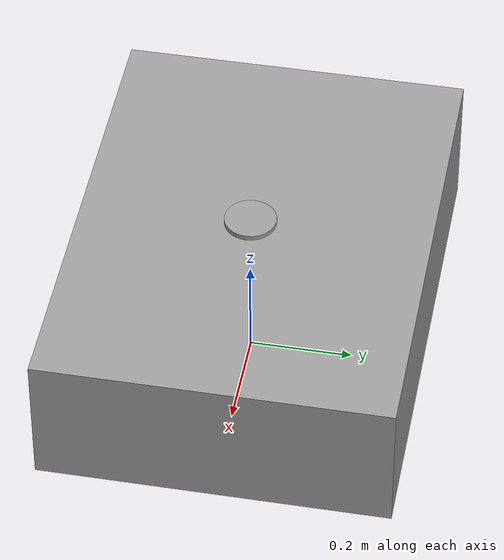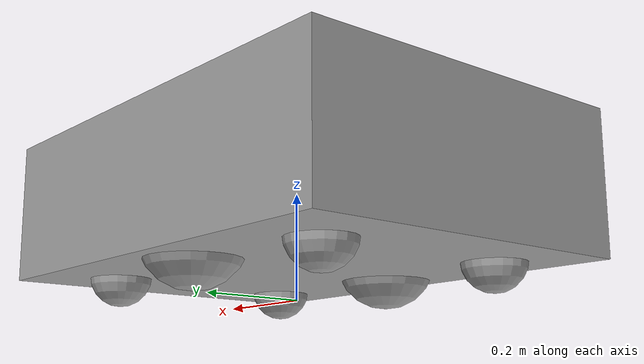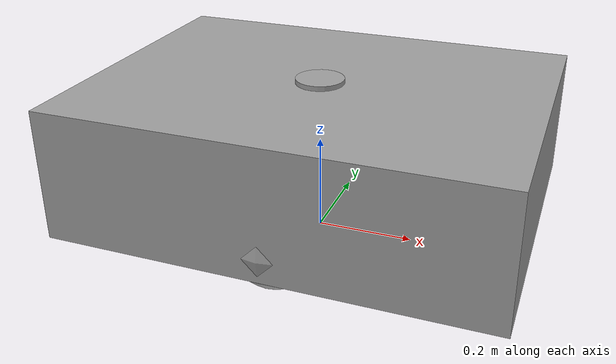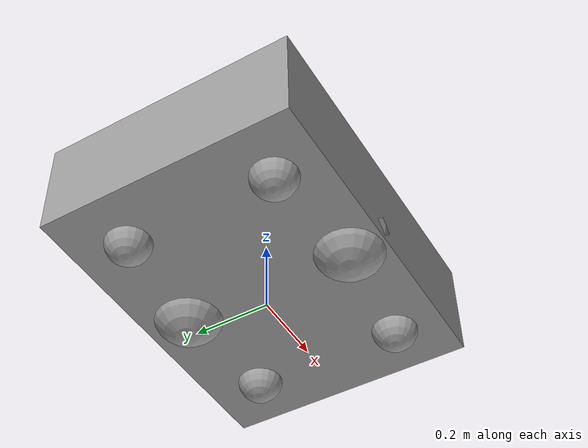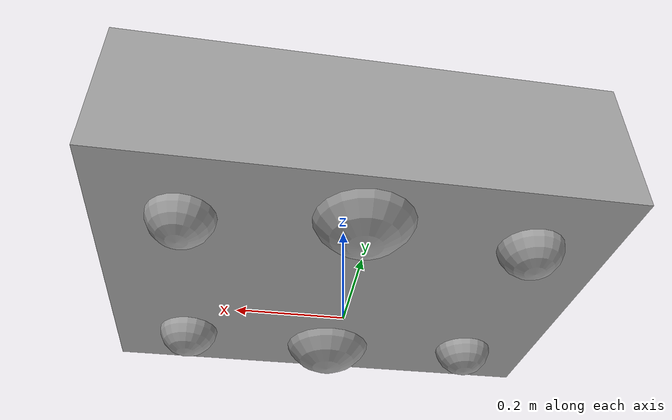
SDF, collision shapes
<sdf version='1.11'>
  <model name='mobile_robot'>
    <link name='base_footprint'>
      <inertial>
        <pose>0.0046992481203007516 0.00035244360902255599 0.17693139097744359 0 0 0</pose>
        <mass>21.280000000000001</mass>
        <inertia>
          <ixx>1.0570062265037601</ixx>
          <ixy>-0.0029647556390977438</ixy>
          <ixz>-0.00030686090225563728</ixz>
          <iyy>1.645813945018797</iyy>
          <iyz>-2.3014567669173841e-05</iyz>
          <izz>2.171759931860902</izz>
        </inertia>
      </inertial>
      <collision name='base_footprint_fixed_joint_lump__base_link_collision'>
        <pose>0 0.01 0.19 0 0 0</pose>
        <geometry>
          <box>
            <size>0.90000000000000002 0.67000000000000004 0.27000000000000002</size>
          </box>
        </geometry>
      </collision>
      <collision name='base_footprint_fixed_joint_lump__front_left_caster_wheel_collision_1'>
        <pose>0.29999999999999999 0.20000000000000001 0.060500000000000012 0 0 0</pose>
        <geometry>
          <sphere>
            <radius>0.059999999999999998</radius>
          </sphere>
        </geometry>
        <surface>
          <contact>
            <ode/>
          </contact>
          <friction>
            <ode>
              <mu>0.10000000000000001</mu>
              <mu2>0.10000000000000001</mu2>
            </ode>
          </friction>
        </surface>
      </collision>
      <collision name='base_footprint_fixed_joint_lump__front_right_caster_wheel_collision_2'>
        <pose>0.29999999999999999 -0.20000000000000001 0.060500000000000012 0 0 0</pose>
        <geometry>
          <sphere>
            <radius>0.059999999999999998</radius>
          </sphere>
        </geometry>
        <surface>
          <contact>
            <ode/>
          </contact>
          <friction>
            <ode>
              <mu>0.10000000000000001</mu>
              <mu2>0.10000000000000001</mu2>
            </ode>
          </friction>
        </surface>
      </collision>
      <collision name='base_footprint_fixed_joint_lump__rear_left_caster_wheel_collision_3'>
        <pose>-0.29999999999999999 0.20000000000000001 0.060500000000000012 0 0 0</pose>
        <geometry>
          <sphere>
            <radius>0.059999999999999998</radius>
          </sphere>
        </geometry>
        <surface>
          <contact>
            <ode/>
          </contact>
          <friction>
            <ode>
              <mu>0.10000000000000001</mu>
              <mu2>0.10000000000000001</mu2>
            </ode>
          </friction>
        </surface>
      </collision>
      <collision name='base_footprint_fixed_joint_lump__rear_right_caster_wheel_collision_4'>
        <pose>-0.29999999999999999 -0.20000000000000001 0.060500000000000012 0 0 0</pose>
        <geometry>
          <sphere>
            <radius>0.059999999999999998</radius>
          </sphere>
        </geometry>
        <surface>
          <contact>
            <ode/>
          </contact>
          <friction>
            <ode>
              <mu>0.10000000000000001</mu>
              <mu2>0.10000000000000001</mu2>
            </ode>
          </friction>
        </surface>
      </collision>
      <collision name='base_footprint_fixed_joint_lump__lidar_link_collision_5'>
        <pose>0 0 0.32000000000000001 0 0 0</pose>
        <geometry>
          <cylinder>
            <length>0.029999999999999999</length>
            <radius>0.050000000000000003</radius>
          </cylinder>
        </geometry>
        <surface>
          <contact>
            <ode/>
          </contact>
          <friction>
            <ode/>
          </friction>
        </surface>
      </collision>
      <visual name='base_footprint_fixed_joint_lump__base_link_visual'>
        <pose>3.2000000000000002 -0.32000000000000001 0.050000000000000003 1.5708 -4.2351647362715017e-22 -3.1415853071795872</pose>
        <geometry>
          <mesh>
            <scale>0.001 0.001 0.001</scale>
            <uri>model://mobile_robot_description/meshes/chasis.STL</uri>
          </mesh>
        </geometry>
        <material>
          <diffuse>0.625 0.625 0.625 1</diffuse>
          <ambient>0.625 0.625 0.625 1</ambient>
        </material>
      </visual>
      <visual name='base_footprint_fixed_joint_lump__front_left_caster_wheel_visual_1'>
        <pose>0.29999999999999999 0.20000000000000001 0.060500000000000012 0 0 0</pose>
        <geometry>
          <sphere>
            <radius>0.059999999999999998</radius>
          </sphere>
        </geometry>
        <material>
          <diffuse>1 1 1 1</diffuse>
          <ambient>1 1 1 1</ambient>
        </material>
      </visual>
      <visual name='base_footprint_fixed_joint_lump__front_right_caster_wheel_visual_2'>
        <pose>0.29999999999999999 -0.20000000000000001 0.060500000000000012 0 0 0</pose>
        <geometry>
          <sphere>
            <radius>0.059999999999999998</radius>
          </sphere>
        </geometry>
        <material>
          <diffuse>1 1 1 1</diffuse>
          <ambient>1 1 1 1</ambient>
        </material>
      </visual>
      <visual name='base_footprint_fixed_joint_lump__rear_left_caster_wheel_visual_3'>
        <pose>-0.29999999999999999 0.20000000000000001 0.060500000000000012 0 0 0</pose>
        <geometry>
          <sphere>
            <radius>0.059999999999999998</radius>
          </sphere>
        </geometry>
        <material>
          <diffuse>1 1 1 1</diffuse>
          <ambient>1 1 1 1</ambient>
        </material>
      </visual>
      <visual name='base_footprint_fixed_joint_lump__rear_right_caster_wheel_visual_4'>
        <pose>-0.29999999999999999 -0.20000000000000001 0.060500000000000012 0 0 0</pose>
        <geometry>
          <sphere>
            <radius>0.059999999999999998</radius>
          </sphere>
        </geometry>
        <material>
          <diffuse>1 1 1 1</diffuse>
          <ambient>1 1 1 1</ambient>
        </material>
      </visual>
      <visual name='base_footprint_fixed_joint_lump__zed_camera_link_visual_5'>
        <pose>0.40000000000000002 -0.070000000000000007 0.16 0 0 1.5708</pose>
        <geometry>
          <mesh>
            <scale>0.001 0.001 0.001</scale>
            <uri>model://mobile_robot_description/meshes/zed.STL</uri>
          </mesh>
        </geometry>
        <material>
          <diffuse>0.625 0.625 0.625 1</diffuse>
          <ambient>0.625 0.625 0.625 1</ambient>
        </material>
      </visual>
      <visual name='base_footprint_fixed_joint_lump__zed_left_optical_frame_visual_6'>
        <pose>0.40000000000000002 0.080000000000000002 0.17999999999999999 -1.5708 -5.5511151231257827e-17 -1.5708</pose>
        <geometry>
          <sphere>
            <radius>0.01</radius>
          </sphere>
        </geometry>
        <material>
          <diffuse>0 1 0 1</diffuse>
          <ambient>0 1 0 1</ambient>
        </material>
      </visual>
      <visual name='base_footprint_fixed_joint_lump__zed_right_optical_frame_visual_7'>
        <pose>0.40000000000000002 -0.02 0.17999999999999999 1.5707926535897929 -7.3464102068427017e-06 1.5707926535897929</pose>
        <geometry>
          <sphere>
            <radius>0.01</radius>
          </sphere>
        </geometry>
        <material>
          <diffuse>0 1 0 1</diffuse>
          <ambient>0 1 0 1</ambient>
        </material>
      </visual>
      <visual name='base_footprint_fixed_joint_lump__zed_imu_link_visual_8'>
        <pose>0.40000000000000002 0.029999999999999999 0.17999999999999999 0 0 0</pose>
        <geometry>
          <box>
            <size>0.02 0.02 0.02</size>
          </box>
        </geometry>
        <material>
          <diffuse>1 1 0 1</diffuse>
          <ambient>1 1 0 1</ambient>
        </material>
      </visual>
      <visual name='base_footprint_fixed_joint_lump__lidar_link_visual_9'>
        <pose>0 0 0.32000000000000001 0 0 0</pose>
        <geometry>
          <cylinder>
            <length>0.029999999999999999</length>
            <radius>0.050000000000000003</radius>
          </cylinder>
        </geometry>
        <material>
          <diffuse>1 0 0 1</diffuse>
          <ambient>1 0 0 1</ambient>
        </material>
      </visual>
      <sensor name='camera' type='camera'>
        <camera>
          <horizontal_fov>1.3962634</horizontal_fov>
          <image>
            <width>640</width>
            <height>480</height>
            <format>R8G8B8</format>
          </image>
          <clip>
            <near>0.10000000000000001</near>
            <far>100</far>
          </clip>
          <noise>
            <type>gaussian</type>
            <mean>0</mean>
            <stddev>0.0070000000000000001</stddev>
          </noise>
          <camera_info_topic>camera/camera_info</camera_info_topic>
          <optical_fram_id>zed_left_optical_frame</optical_fram_id>
        </camera>
        <always_on>true</always_on>
        <update_rate>30</update_rate>
        <visualize>true</visualize>
        <topic>camera/image_raw</topic>
        <pose>0.40000000000000002 0.029999999999999999 0.16 0 0 0</pose>
        <frame_id>zed_left_optical_frame</frame_id>
      </sensor>
      <sensor name='depth_camera' type='depth_camera'>
        <always_on>true</always_on>
        <update_rate>30</update_rate>
        <visualize>true</visualize>
        <topic>depth_camera</topic>
        <pose>0.40000000000000002 0.029999999999999999 0.16 0 0 0</pose>
        <depth_camera>
          <horizontal_fov>1.3962634</horizontal_fov>
          <camera_info>
            <width>320</width>
            <height>240</height>
            <K>700 0 960 0 700 540 0 0 1</K>
            <D>0 0 0 0 0</D>
            <distortion_model>plumb_bob</distortion_model>
          </camera_info>
          <clip>
            <near>0.1</near>
            <far>100</far>
          </clip>
          <noise>
            <type>gaussian</type>
            <mean>0.0</mean>
            <stddev>0.007</stddev>
          </noise>
          <optical_fram_id>zed_right_optical_frame</optical_fram_id>
        </depth_camera>
        <frame_id>depth_camera</frame_id>
        <camera>
          <horizontal_fov>1.0469999999999999</horizontal_fov>
          <image>
            <width>320</width>
            <height>240</height>
          </image>
          <clip>
            <near>0.10000000000000001</near>
            <far>100</far>
          </clip>
        </camera>
      </sensor>
      <sensor name='imu' type='imu'>
        <imu/>
        <always_on>true</always_on>
        <visualize>true</visualize>
        <topic>imu/data_raw</topic>
        <pose>0.40000000000000002 0.029999999999999999 0.17999999999999999 0 0 0</pose>
        <initialOrientationAsReference>false</initialOrientationAsReference>
        <updateRate>100</updateRate>
      </sensor>
      <sensor name='gpu_lidar' type='gpu_lidar'>
        <pose relative_to='lidar_link'>0 0 0 0 0 0</pose>
        <always_on>true</always_on>
        <visualize>true</visualize>
        <update_rate>30</update_rate>
        <topic>lidar/pointcloud</topic>
        <lidar>
          <scan>
            <horizontal>
              <samples>720</samples>
              <resolution>1</resolution>
              <min_angle>-3.1400000000000001</min_angle>
              <max_angle>3.1400000000000001</max_angle>
            </horizontal>
            <vertical>
              <samples>32</samples>
              <resolution>1</resolution>
              <min_angle>-0.5</min_angle>
              <max_angle>0.5</max_angle>
            </vertical>
          </scan>
          <range>
            <min>0.80000000000000004</min>
            <max>20</max>
            <resolution>0.001</resolution>
          </range>
          <noise>
            <type>gaussian</type>
            <mean>0</mean>
            <stddev>0.0070000000000000001</stddev>
          </noise>
        </lidar>
      </sensor>
    </link>
    <joint name='base_left_wheel_joint' type='revolute'>
      <pose relative_to='base_footprint'>0 0.23000000000000001 0.10000000000000001 0 0 0</pose>
      <parent>base_footprint</parent>
      <child>left_wheel_link</child>
      <axis>
        <xyz>0 1 0</xyz>
        <limit>
          <lower>-inf</lower>
          <upper>inf</upper>
        </limit>
        <dynamics>
          <spring_reference>0</spring_reference>
          <spring_stiffness>0</spring_stiffness>
        </dynamics>
      </axis>
    </joint>
    <link name='left_wheel_link'>
      <pose relative_to='base_left_wheel_joint'>0 0 0 0 0 0</pose>
      <inertial>
        <pose>0 0 0 0 0 0</pose>
        <mass>2</mass>
        <inertia>
          <ixx>0.01</ixx>
          <ixy>0</ixy>
          <ixz>0</ixz>
          <iyy>0.01</iyy>
          <iyz>0</iyz>
          <izz>0.02</izz>
        </inertia>
      </inertial>
      <collision name='left_wheel_link_collision'>
        <pose>0 0 0 0 0 0</pose>
        <geometry>
          <sphere>
            <radius>0.10000000000000001</radius>
          </sphere>
        </geometry>
      </collision>
      <visual name='left_wheel_link_visual'>
        <pose>0.10000000000000001 -0.02 -0.10000000000000001 1.5708 -4.2351647362715017e-22 -3.1415853071795872</pose>
        <geometry>
          <mesh>
            <scale>0.001 0.001 0.001</scale>
            <uri>model://mobile_robot_description/meshes/wheel.STL</uri>
          </mesh>
        </geometry>
        <material>
          <diffuse>0.625 0.625 0.625 1</diffuse>
          <ambient>0.625 0.625 0.625 1</ambient>
        </material>
      </visual>
    </link>
    <joint name='base_right_wheel_joint' type='revolute'>
      <pose relative_to='base_footprint'>0 -0.23000000000000001 0.10000000000000001 0 0 0</pose>
      <parent>base_footprint</parent>
      <child>right_wheel_link</child>
      <axis>
        <xyz>0 1 0</xyz>
        <limit>
          <lower>-inf</lower>
          <upper>inf</upper>
        </limit>
        <dynamics>
          <spring_reference>0</spring_reference>
          <spring_stiffness>0</spring_stiffness>
        </dynamics>
      </axis>
    </joint>
    <link name='right_wheel_link'>
      <pose relative_to='base_right_wheel_joint'>0 0 0 0 0 0</pose>
      <inertial>
        <pose>0 0 0 0 0 0</pose>
        <mass>2</mass>
        <inertia>
          <ixx>0.01</ixx>
          <ixy>0</ixy>
          <ixz>0</ixz>
          <iyy>0.01</iyy>
          <iyz>0</iyz>
          <izz>0.02</izz>
        </inertia>
      </inertial>
      <collision name='right_wheel_link_collision'>
        <pose>0 0 0 0 0 0</pose>
        <geometry>
          <sphere>
            <radius>0.10000000000000001</radius>
          </sphere>
        </geometry>
      </collision>
      <visual name='right_wheel_link_visual'>
        <pose>0.10000000000000001 -0.02 -0.10000000000000001 1.5708 -4.2351647362715017e-22 -3.1415853071795872</pose>
        <geometry>
          <mesh>
            <scale>0.001 0.001 0.001</scale>
            <uri>model://mobile_robot_description/meshes/wheel.STL</uri>
          </mesh>
        </geometry>
        <material>
          <diffuse>0.625 0.625 0.625 1</diffuse>
          <ambient>0.625 0.625 0.625 1</ambient>
        </material>
      </visual>
    </link>
    <plugin name='gz::sim::systems::Sensors' filename='gz-sim-sensors-system'>
      <render_engine>ogre2</render_engine>
    </plugin>
    <plugin name='gz::sim::systems::Imu' filename='gz-sim-imu-system'/>
    <plugin name='gz_ros2_control::GazeboSimROS2ControlPlugin' filename='gz_ros2_control-system'>
      <parameters>/home/fasta/Projects/ROS/mobile_robot_ws/install/mobile_robot_controller/share/mobile_robot_controller/config/mobile_robot_controllers.yaml</parameters>
      <controller_manager_node_name>controller_manager</controller_manager_node_name>
      <ros>
        <remapping>/diff_drive_base_controller/cmd_vel:=/cmd_vel</remapping>
        <remapping>/diff_drive_base_controller/odom:=/odom</remapping>
      </ros>
    </plugin>
    <frame name='base_front_left_caster_wheel_joint' attached_to='base_link'>
      <pose>0.29999999999999999 0.20000000000000001 0.010500000000000001 0 0 0</pose>
    </frame>
    <frame name='front_left_caster_wheel' attached_to='base_front_left_caster_wheel_joint'>
      <pose>0 0 0 0 0 0</pose>
    </frame>
    <frame name='base_front_right_caster_wheel_joint' attached_to='base_link'>
      <pose>0.29999999999999999 -0.20000000000000001 0.010500000000000001 0 0 0</pose>
    </frame>
    <frame name='front_right_caster_wheel' attached_to='base_front_right_caster_wheel_joint'>
      <pose>0 0 0 0 0 0</pose>
    </frame>
    <frame name='base_rear_left_caster_wheel_joint' attached_to='base_link'>
      <pose>-0.29999999999999999 0.20000000000000001 0.010500000000000001 0 0 0</pose>
    </frame>
    <frame name='rear_left_caster_wheel' attached_to='base_rear_left_caster_wheel_joint'>
      <pose>0 0 0 0 0 0</pose>
    </frame>
    <frame name='base_rear_right_caster_wheel_joint' attached_to='base_link'>
      <pose>-0.29999999999999999 -0.20000000000000001 0.010500000000000001 0 0 0</pose>
    </frame>
    <frame name='rear_right_caster_wheel' attached_to='base_rear_right_caster_wheel_joint'>
      <pose>0 0 0 0 0 0</pose>
    </frame>
    <frame name='zed_camera_optical_joint' attached_to='zed_camera_link'>
      <pose>0 0.050000000000000003 0.02 -1.5708 -5.5511151231257827e-17 -1.5708</pose>
    </frame>
    <frame name='zed_left_optical_frame' attached_to='zed_camera_optical_joint'>
      <pose>0 0 0 0 0 0</pose>
    </frame>
    <frame name='zed_camera_right_optical_joint' attached_to='zed_camera_link'>
      <pose>0 -0.050000000000000003 0.02 1.5707926535897929 -7.3464102068427017e-06 1.5707926535897929</pose>
    </frame>
    <frame name='zed_right_optical_frame' attached_to='zed_camera_right_optical_joint'>
      <pose>0 0 0 0 0 0</pose>
    </frame>
    <frame name='zed_imu_joint' attached_to='zed_camera_link'>
      <pose>0 0 0.02 0 0 0</pose>
    </frame>
    <frame name='zed_imu_link' attached_to='zed_imu_joint'>
      <pose>0 0 0 0 0 0</pose>
    </frame>
    <frame name='base_zed_camera_joint' attached_to='base_link'>
      <pose>0.40000000000000002 0.029999999999999999 0.11 0 0 0</pose>
    </frame>
    <frame name='zed_camera_link' attached_to='base_zed_camera_joint'>
      <pose>0 0 0 0 0 0</pose>
    </frame>
    <frame name='top_lidar_joint' attached_to='base_link'>
      <pose>0 0 0.27000000000000002 0 0 0</pose>
    </frame>
    <frame name='lidar_link' attached_to='top_lidar_joint'>
      <pose>0 0 0 0 0 0</pose>
    </frame>
    <frame name='base_footprint_joint' attached_to='base_footprint'>
      <pose>0 0 0.050000000000000003 0 0 0</pose>
    </frame>
    <frame name='base_link' attached_to='base_footprint_joint'>
      <pose>0 0 0 0 0 0</pose>
    </frame>
  </model>
</sdf>
